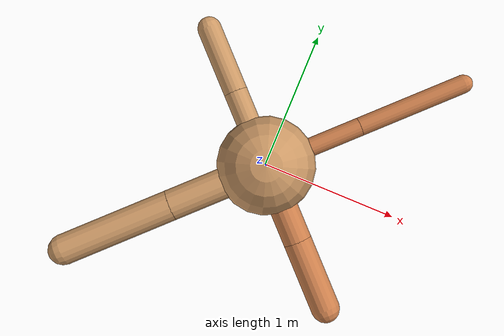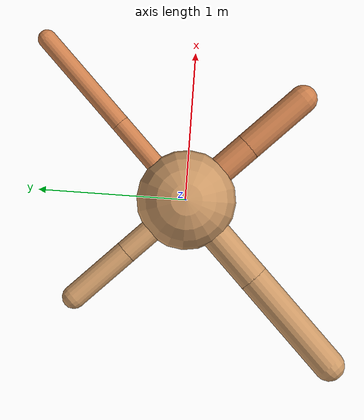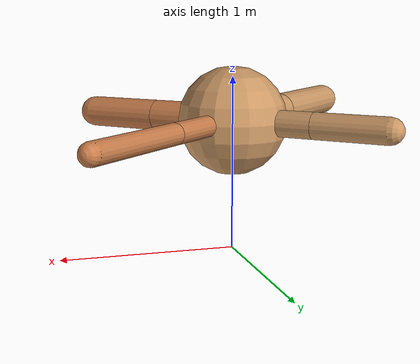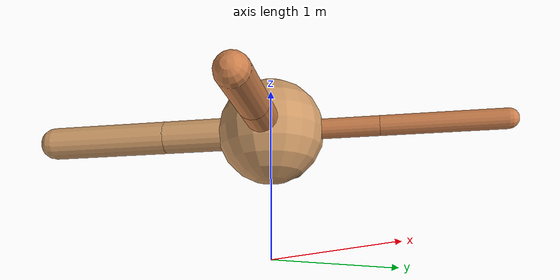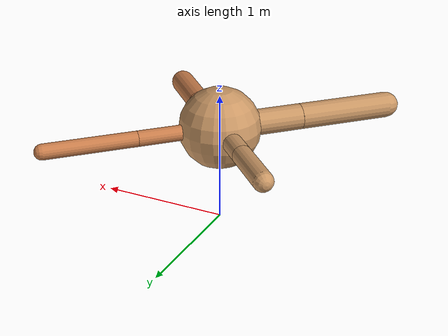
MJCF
<?xml version="1.0" ?>
<mujoco model="ant">

	<compiler angle="degree" coordinate="local" inertiafromgeom="true"/>

	<option integrator="RK4" timestep="0.01"/>

	<custom>

		<numeric data="0.0 0.0 0.55 1.0 0.0 0.0 0.0 0.0 1.0 0.0 -1.0 0.0 -1.0 0.0 1.0" name="init_qpos"/>

	</custom>

	<default>

		<joint armature="1" damping="1" limited="true"/>

		<geom conaffinity="0" condim="3" density="5.0" friction="1.5 0.1 0.1" margin="0.01" rgba="0.8 0.6 0.4 1"/>

	</default>

	<worldbody>

		<body name="torso" pos="0 0 0.75">

			<geom name="torso_geom" pos="0 0 0" size="0.31139401051129134" type="sphere"/>

			<!--joint armature="0" damping="0" limited="false" margin="0.01" name="root" pos="0 0 0" type="free"/-->

			<body name="front_left_leg" pos="0 0 0">

				<geom fromto="0 0 0 0.2 0.2 0" name="aux_1_geom" size="0.0589161880565295" type="capsule" rgba=".8 .5 .3 1"/>

				<body name="aux_1" pos="0.2 0.2 0">

					<joint axis="0 0 1" name="hip_1" pos="0.0 0.0 0.0" range="-40 40" type="hinge"/>

					<geom fromto="0 0 0 0.24641101781622132 0.24641101781622132 0" name="left_leg_geom" size="0.0589161880565295" type="capsule" rgba=".8 .5 .3 1"/>

					<body pos="0.24641101781622132 0.24641101781622132 0" name="front_left_foot">

						<joint axis="-1 1 0" name="ankle_1" pos="0.0 0.0 0.0" range="30 100" type="hinge"/>

						<geom fromto="0 0 0 0.49282203563244265 0.49282203563244265 0" name="left_ankle_geom" size="0.0589161880565295" type="capsule" rgba=".8 .5 .3 1"/>

					</body>

				</body>

			</body>

			<body name="front_right_leg" pos="0 0 0">

				<geom fromto="0 0 0 -0.2 0.2 0" name="aux_2_geom" size="0.07526275225247511" type="capsule"/>

				<body name="aux_2" pos="-0.2 0.2 0">

					<joint axis="0 0 1" name="hip_2" pos="0.0 0.0 0.0" range="-40 40" type="hinge"/>

					<geom fromto="0 0 0 -0.15112279951270688 0.15112279951270688 0" name="right_leg_geom" size="0.07526275225247511" type="capsule"/>

					<body pos="-0.15112279951270688 0.15112279951270688 0" name="front_right_foot">

						<joint axis="1 1 0" name="ankle_2" pos="0.0 0.0 0.0" range="-100 -30" type="hinge"/>

						<geom fromto="0 0 0 -0.30224559902541376 0.30224559902541376 0" name="right_ankle_geom" size="0.07526275225247511" type="capsule"/>

					</body>

				</body>

			</body>

			<body name="left_back_leg" pos="0 0 0">

				<geom fromto="0 0 0 -0.2 -0.2 0" name="aux_3_geom" size="0.09828848889008038" type="capsule"/>

				<body name="aux_3" pos="-0.2 -0.2 0">

					<joint axis="0 0 1" name="hip_3" pos="0.0 0.0 0.0" range="-40 40" type="hinge"/>

					<geom fromto="0 0 0 -0.2549761992969339 -0.2549761992969339 0" name="back_leg_geom" size="0.09828848889008038" type="capsule"/>

					<body pos="-0.2549761992969339 -0.2549761992969339 0" name="left_back_foot">

						<joint axis="-1 1 0" name="ankle_3" pos="0.0 0.0 0.0" range="-100 -30" type="hinge"/>

						<geom fromto="0 0 0 -0.5099523985938678 -0.5099523985938678 0" name="third_ankle_geom" size="0.09828848889008038" type="capsule"/>

					</body>

				</body>

			</body>

			<body name="right_back_leg" pos="0 0 0">

				<geom fromto="0 0 0 0.2 -0.2 0" name="aux_4_geom" size="0.09026308482400823" type="capsule" rgba=".8 .5 .3 1"/>

				<body name="aux_4" pos="0.2 -0.2 0">

					<joint axis="0 0 1" name="hip_4" pos="0.0 0.0 0.0" range="-40 40" type="hinge"/>

					<geom fromto="0 0 0 0.16047302869638172 -0.16047302869638172 0" name="rightback_leg_geom" size="0.09026308482400823" type="capsule" rgba=".8 .5 .3 1"/>

					<body pos="0.16047302869638172 -0.16047302869638172 0" name="right_back_foot">

						<joint axis="1 1 0" name="ankle_4" pos="0.0 0.0 0.0" range="30 100" type="hinge"/>

						<geom fromto="0 0 0 0.32094605739276344 -0.32094605739276344 0" name="fourth_ankle_geom" size="0.09026308482400823" type="capsule" rgba=".8 .5 .3 1"/>

					</body>

				</body>

			</body>

		</body>

	</worldbody>

	<actuator>

		<motor ctrllimited="true" ctrlrange="-1.0 1.0" joint="hip_4" gear="150"/>

		<motor ctrllimited="true" ctrlrange="-1.0 1.0" joint="ankle_4" gear="150"/>

		<motor ctrllimited="true" ctrlrange="-1.0 1.0" joint="hip_1" gear="150"/>

		<motor ctrllimited="true" ctrlrange="-1.0 1.0" joint="ankle_1" gear="150"/>

		<motor ctrllimited="true" ctrlrange="-1.0 1.0" joint="hip_2" gear="150"/>

		<motor ctrllimited="true" ctrlrange="-1.0 1.0" joint="ankle_2" gear="150"/>

		<motor ctrllimited="true" ctrlrange="-1.0 1.0" joint="hip_3" gear="150"/>

		<motor ctrllimited="true" ctrlrange="-1.0 1.0" joint="ankle_3" gear="150"/>

	</actuator>

</mujoco>
